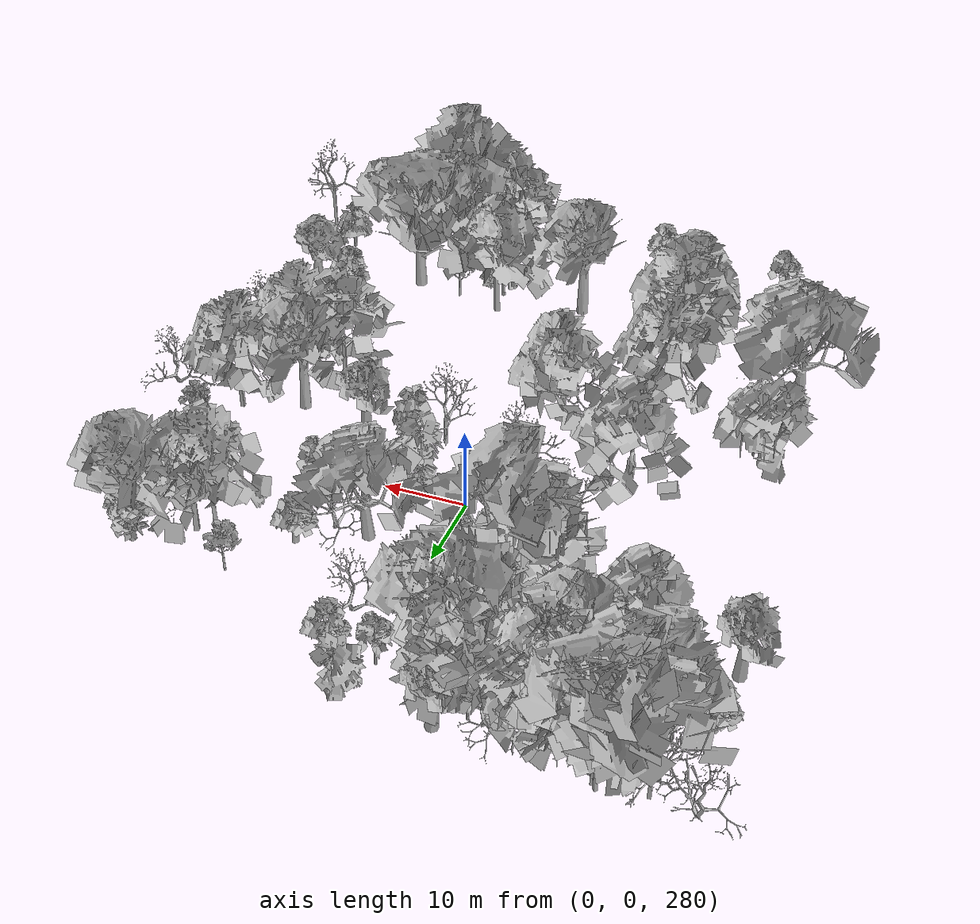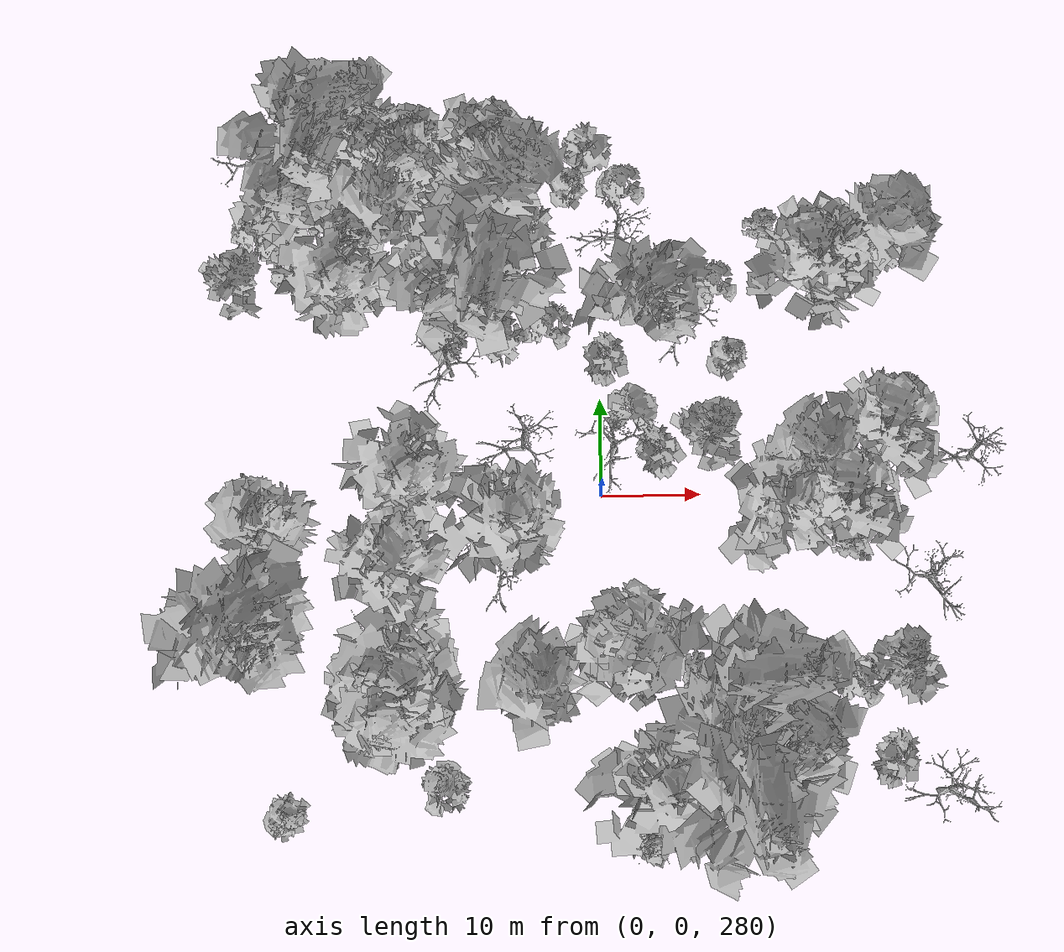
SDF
<sdf version="1.6">
 <world name="default">
  <light name="sun" type="directional">
   <pose>0 0 10 0 -0 0</pose>
   <diffuse>0.8 0.8 0.8 1</diffuse>
   <specular>0.2 0.2 0.2 1</specular>
   <attenuation>
    <range>1000</range>
    <constant>0.9</constant>
    <linear>0.01</linear>
    <quadratic>0.001</quadratic>
   </attenuation>
   <direction>-0.5 0.1 -0.9</direction>
  </light>
  <scene>
   <sky><clouds><speed>12</speed></clouds></sky>
   <ambient>0.4 0.4 0.4 1</ambient>
   <background>0.7 0.7 0.7 1</background>
   <shadows>1</shadows>
  </scene>
  <spherical_coordinates>
   <surface_model>EARTH_WGS84</surface_model>
   <latitude_deg>47.3977</latitude_deg>
   <longitude_deg>8.54559</longitude_deg>
   <elevation>0</elevation>
   <heading_deg>0</heading_deg>
  </spherical_coordinates>
  <physics name="default_physics" default="0" type="ode">
   <ode>
    <solver>
     <type>quick</type>
     <iters>100</iters>
     <sor>1.3</sor>
     <use_dynamic_moi_rescaling>0</use_dynamic_moi_rescaling>
    </solver>
    <constraints>
     <cfm>0</cfm>
     <erp>0.2</erp>
     <contact_max_correcting_vel>100</contact_max_correcting_vel>
     <contact_surface_layer>0.001</contact_surface_layer>
    </constraints>
   </ode>
   <max_step_size>0.002</max_step_size>
   <real_time_factor>1</real_time_factor>
   <real_time_update_rate>500</real_time_update_rate>
  </physics>
  <gravity>0 0 -9.8</gravity>
  <magnetic_field>6e-06 2.3e-05 -4.2e-05</magnetic_field>
  <atmosphere type="adiabatic"/>
  <model name="my_mesh0">
   <pose>-28.4088 34.5346 282.297 0 0 -1.51113</pose>
   <static>1</static>
   <link name="body">
    <visual name="visual">
     <geometry><mesh><uri>model://trees/10.dae</uri><scale>1 1 1</scale></mesh></geometry>
    </visual>
    <collision name="collision">
     <geometry><mesh><uri>model://trees/10.dae</uri><scale>1 1 1</scale></mesh></geometry>
    </collision>
   </link>
  </model>
  <model name="my_mesh1">
   <pose>-17.8794 31.9411 283.606 0 0 -0.438755</pose>
   <static>1</static>
   <link name="body">
    <visual name="visual">
     <geometry><mesh><uri>model://trees/13.dae</uri><scale>1 1 1</scale></mesh></geometry>
    </visual>
    <collision name="collision">
     <geometry><mesh><uri>model://trees/13.dae</uri><scale>1 1 1</scale></mesh></geometry>
    </collision>
   </link>
  </model>
  <model name="my_mesh2">
   <pose>-21.5025 27.5633 284.039 0 0 -0.332394</pose>
   <static>1</static>
   <link name="body">
    <visual name="visual">
     <geometry><mesh><uri>model://trees/11.dae</uri><scale>1 1 1</scale></mesh></geometry>
    </visual>
    <collision name="collision">
     <geometry><mesh><uri>model://trees/11.dae</uri><scale>1 1 1</scale></mesh></geometry>
    </collision>
   </link>
  </model>
  <model name="my_mesh3">
   <pose>-11.5509 32.0171 283.821 0 0 -0.608985</pose>
   <static>1</static>
   <link name="body">
    <visual name="visual">
     <geometry><mesh><uri>model://trees/14.dae</uri><scale>1 1 1</scale></mesh></geometry>
    </visual>
    <collision name="collision">
     <geometry><mesh><uri>model://trees/14.dae</uri><scale>1 1 1</scale></mesh></geometry>
    </collision>
   </link>
  </model>
  <model name="my_mesh4">
   <pose>-20.0736 32.1003 283.446 0 0 -0.068181</pose>
   <static>1</static>
   <link name="body">
    <visual name="visual">
     <geometry><mesh><uri>model://trees/15.dae</uri><scale>1 1 1</scale></mesh></geometry>
    </visual>
    <collision name="collision">
     <geometry><mesh><uri>model://trees/15.dae</uri><scale>1 1 1</scale></mesh></geometry>
    </collision>
   </link>
  </model>
  <model name="my_mesh5">
   <pose>-35.4093 34.9642 281.585 0 -0 1.01191</pose>
   <static>1</static>
   <link name="body">
    <visual name="visual">
     <geometry><mesh><uri>model://trees/18.dae</uri><scale>1 1 1</scale></mesh></geometry>
    </visual>
    <collision name="collision">
     <geometry><mesh><uri>model://trees/18.dae</uri><scale>1 1 1</scale></mesh></geometry>
    </collision>
   </link>
  </model>
  <model name="my_mesh6">
   <pose>-35.4237 19.8077 284.057 0 -0 0.912866</pose>
   <static>1</static>
   <link name="body">
    <visual name="visual">
     <geometry><mesh><uri>model://trees/7.dae</uri><scale>1 1 1</scale></mesh></geometry>
    </visual>
    <collision name="collision">
     <geometry><mesh><uri>model://trees/7.dae</uri><scale>1 1 1</scale></mesh></geometry>
    </collision>
   </link>
  </model>
  <model name="my_mesh7">
   <pose>-29.788 32.2005 282.536 0 0 -0.453841</pose>
   <static>1</static>
   <link name="body">
    <visual name="visual">
     <geometry><mesh><uri>model://trees/19.dae</uri><scale>1 1 1</scale></mesh></geometry>
    </visual>
    <collision name="collision">
     <geometry><mesh><uri>model://trees/19.dae</uri><scale>1 1 1</scale></mesh></geometry>
    </collision>
   </link>
  </model>
  <model name="my_mesh8">
   <pose>-25.8871 35.5865 282.403 0 0 -0.879666</pose>
   <static>1</static>
   <link name="body">
    <visual name="visual">
     <geometry><mesh><uri>model://trees/3.dae</uri><scale>1 1 1</scale></mesh></geometry>
    </visual>
    <collision name="collision">
     <geometry><mesh><uri>model://trees/3.dae</uri><scale>1 1 1</scale></mesh></geometry>
    </collision>
   </link>
  </model>
  <model name="my_mesh9">
   <pose>-26.3975 35.9175 282.279 0 -0 1.4302</pose>
   <static>1</static>
   <link name="body">
    <visual name="visual">
     <geometry><mesh><uri>model://trees/17.dae</uri><scale>1 1 1</scale></mesh></geometry>
    </visual>
    <collision name="collision">
     <geometry><mesh><uri>model://trees/17.dae</uri><scale>1 1 1</scale></mesh></geometry>
    </collision>
   </link>
  </model>
  <model name="my_mesh10">
   <pose>-29.4687 28.6044 283.001 0 -0 0.155872</pose>
   <static>1</static>
   <link name="body">
    <visual name="visual">
     <geometry><mesh><uri>model://trees/1.dae</uri><scale>1 1 1</scale></mesh></geometry>
    </visual>
    <collision name="collision">
     <geometry><mesh><uri>model://trees/1.dae</uri><scale>1 1 1</scale></mesh></geometry>
    </collision>
   </link>
  </model>
  <model name="my_mesh11">
   <pose>-19.239 31.402 283.623 0 0 -0.700118</pose>
   <static>1</static>
   <link name="body">
    <visual name="visual">
     <geometry><mesh><uri>model://trees/19.dae</uri><scale>1 1 1</scale></mesh></geometry>
    </visual>
    <collision name="collision">
     <geometry><mesh><uri>model://trees/19.dae</uri><scale>1 1 1</scale></mesh></geometry>
    </collision>
   </link>
  </model>
  <model name="my_mesh12">
   <pose>-26.0111 22.6941 284.252 0 0 -0.965343</pose>
   <static>1</static>
   <link name="body">
    <visual name="visual">
     <geometry><mesh><uri>model://trees/18.dae</uri><scale>1 1 1</scale></mesh></geometry>
    </visual>
    <collision name="collision">
     <geometry><mesh><uri>model://trees/18.dae</uri><scale>1 1 1</scale></mesh></geometry>
    </collision>
   </link>
  </model>
  <model name="my_mesh13">
   <pose>-13.7154 31.4853 283.916 0 -0 0.332234</pose>
   <static>1</static>
   <link name="body">
    <visual name="visual">
     <geometry><mesh><uri>model://trees/4.dae</uri><scale>1 1 1</scale></mesh></geometry>
    </visual>
    <collision name="collision">
     <geometry><mesh><uri>model://trees/4.dae</uri><scale>1 1 1</scale></mesh></geometry>
    </collision>
   </link>
  </model>
  <model name="my_mesh14">
   <pose>-30.9812 34.8078 282.013 0 0 -0.646296</pose>
   <static>1</static>
   <link name="body">
    <visual name="visual">
     <geometry><mesh><uri>model://trees/17.dae</uri><scale>1 1 1</scale></mesh></geometry>
    </visual>
    <collision name="collision">
     <geometry><mesh><uri>model://trees/17.dae</uri><scale>1 1 1</scale></mesh></geometry>
    </collision>
   </link>
  </model>
  <model name="my_mesh15">
   <pose>-14.9129 33.4919 283.533 0 0 -0.021752</pose>
   <static>1</static>
   <link name="body">
    <visual name="visual">
     <geometry><mesh><uri>model://trees/18.dae</uri><scale>1 1 1</scale></mesh></geometry>
    </visual>
    <collision name="collision">
     <geometry><mesh><uri>model://trees/18.dae</uri><scale>1 1 1</scale></mesh></geometry>
    </collision>
   </link>
  </model>
  <model name="my_mesh16">
   <pose>-30.7776 28.2428 282.873 0 0 -1.40073</pose>
   <static>1</static>
   <link name="body">
    <visual name="visual">
     <geometry><mesh><uri>model://trees/11.dae</uri><scale>1 1 1</scale></mesh></geometry>
    </visual>
    <collision name="collision">
     <geometry><mesh><uri>model://trees/11.dae</uri><scale>1 1 1</scale></mesh></geometry>
    </collision>
   </link>
  </model>
  <model name="my_mesh17">
   <pose>-26.1696 20.3824 284.596 0 0 -0.68529</pose>
   <static>1</static>
   <link name="body">
    <visual name="visual">
     <geometry><mesh><uri>model://trees/12.dae</uri><scale>1 1 1</scale></mesh></geometry>
    </visual>
    <collision name="collision">
     <geometry><mesh><uri>model://trees/12.dae</uri><scale>1 1 1</scale></mesh></geometry>
    </collision>
   </link>
  </model>
  <model name="my_mesh18">
   <pose>-23.2418 30.8693 283.314 0 -0 0.367331</pose>
   <static>1</static>
   <link name="body">
    <visual name="visual">
     <geometry><mesh><uri>model://trees/16.dae</uri><scale>1 1 1</scale></mesh></geometry>
    </visual>
    <collision name="collision">
     <geometry><mesh><uri>model://trees/16.dae</uri><scale>1 1 1</scale></mesh></geometry>
    </collision>
   </link>
  </model>
  <model name="my_mesh19">
   <pose>-26.1749 34.6518 282.526 0 -0 0.747537</pose>
   <static>1</static>
   <link name="body">
    <visual name="visual">
     <geometry><mesh><uri>model://trees/10.dae</uri><scale>1 1 1</scale></mesh></geometry>
    </visual>
    <collision name="collision">
     <geometry><mesh><uri>model://trees/10.dae</uri><scale>1 1 1</scale></mesh></geometry>
    </collision>
   </link>
  </model>
  <model name="my_mesh20">
   <pose>-25.3025 34.4943 282.581 0 -0 0.532983</pose>
   <static>1</static>
   <link name="body">
    <visual name="visual">
     <geometry><mesh><uri>model://trees/14.dae</uri><scale>1 1 1</scale></mesh></geometry>
    </visual>
    <collision name="collision">
     <geometry><mesh><uri>model://trees/14.dae</uri><scale>1 1 1</scale></mesh></geometry>
    </collision>
   </link>
  </model>
  <model name="my_mesh21">
   <pose>-34.5923 26.2613 283.074 0 -0 0.641265</pose>
   <static>1</static>
   <link name="body">
    <visual name="visual">
     <geometry><mesh><uri>model://trees/1.dae</uri><scale>1 1 1</scale></mesh></geometry>
    </visual>
    <collision name="collision">
     <geometry><mesh><uri>model://trees/1.dae</uri><scale>1 1 1</scale></mesh></geometry>
    </collision>
   </link>
  </model>
  <model name="my_mesh22">
   <pose>-32.6772 24.7397 283.355 0 -0 0.827893</pose>
   <static>1</static>
   <link name="body">
    <visual name="visual">
     <geometry><mesh><uri>model://trees/2.dae</uri><scale>1 1 1</scale></mesh></geometry>
    </visual>
    <collision name="collision">
     <geometry><mesh><uri>model://trees/2.dae</uri><scale>1 1 1</scale></mesh></geometry>
    </collision>
   </link>
  </model>
  <model name="my_mesh23">
   <pose>-23.3553 30.0352 283.534 0 0 -0.638998</pose>
   <static>1</static>
   <link name="body">
    <visual name="visual">
     <geometry><mesh><uri>model://trees/3.dae</uri><scale>1 1 1</scale></mesh></geometry>
    </visual>
    <collision name="collision">
     <geometry><mesh><uri>model://trees/3.dae</uri><scale>1 1 1</scale></mesh></geometry>
    </collision>
   </link>
  </model>
  <model name="my_mesh24">
   <pose>-13.4147 33.2828 283.531 0 0 -0.741546</pose>
   <static>1</static>
   <link name="body">
    <visual name="visual">
     <geometry><mesh><uri>model://trees/2.dae</uri><scale>1 1 1</scale></mesh></geometry>
    </visual>
    <collision name="collision">
     <geometry><mesh><uri>model://trees/2.dae</uri><scale>1 1 1</scale></mesh></geometry>
    </collision>
   </link>
  </model>
  <model name="my_mesh25">
   <pose>-26.0536 33.1127 282.69 0 -0 0.557614</pose>
   <static>1</static>
   <link name="body">
    <visual name="visual">
     <geometry><mesh><uri>model://trees/13.dae</uri><scale>1 1 1</scale></mesh></geometry>
    </visual>
    <collision name="collision">
     <geometry><mesh><uri>model://trees/13.dae</uri><scale>1 1 1</scale></mesh></geometry>
    </collision>
   </link>
  </model>
  <model name="my_mesh26">
   <pose>-22.6295 30.2768 283.484 0 0 -1.01206</pose>
   <static>1</static>
   <link name="body">
    <visual name="visual">
     <geometry><mesh><uri>model://trees/2.dae</uri><scale>1 1 1</scale></mesh></geometry>
    </visual>
    <collision name="collision">
     <geometry><mesh><uri>model://trees/2.dae</uri><scale>1 1 1</scale></mesh></geometry>
    </collision>
   </link>
  </model>
  <model name="my_mesh27">
   <pose>-22.5896 32.1897 283.245 0 -0 0.664648</pose>
   <static>1</static>
   <link name="body">
    <visual name="visual">
     <geometry><mesh><uri>model://trees/15.dae</uri><scale>1 1 1</scale></mesh></geometry>
    </visual>
    <collision name="collision">
     <geometry><mesh><uri>model://trees/15.dae</uri><scale>1 1 1</scale></mesh></geometry>
    </collision>
   </link>
  </model>
  <model name="my_mesh28">
   <pose>-22.8065 33.1455 283.002 0 0 -0.834272</pose>
   <static>1</static>
   <link name="body">
    <visual name="visual">
     <geometry><mesh><uri>model://trees/15.dae</uri><scale>1 1 1</scale></mesh></geometry>
    </visual>
    <collision name="collision">
     <geometry><mesh><uri>model://trees/15.dae</uri><scale>1 1 1</scale></mesh></geometry>
    </collision>
   </link>
  </model>
  <model name="my_mesh29">
   <pose>-19.3142 30.8064 283.623 0 0 -1.25954</pose>
   <static>1</static>
   <link name="body">
    <visual name="visual">
     <geometry><mesh><uri>model://trees/15.dae</uri><scale>1 1 1</scale></mesh></geometry>
    </visual>
    <collision name="collision">
     <geometry><mesh><uri>model://trees/15.dae</uri><scale>1 1 1</scale></mesh></geometry>
    </collision>
   </link>
  </model>
  <model name="my_mesh30">
   <pose>1.86501 25.4807 285.312 0 0 -1.11542</pose>
   <static>1</static>
   <link name="body">
    <visual name="visual">
     <geometry><mesh><uri>model://trees/19.dae</uri><scale>1 1 1</scale></mesh></geometry>
    </visual>
    <collision name="collision">
     <geometry><mesh><uri>model://trees/19.dae</uri><scale>1 1 1</scale></mesh></geometry>
    </collision>
   </link>
  </model>
  <model name="my_mesh31">
   <pose>-15.7926 32.054 283.714 0 0 -0.87119</pose>
   <static>1</static>
   <link name="body">
    <visual name="visual">
     <geometry><mesh><uri>model://trees/19.dae</uri><scale>1 1 1</scale></mesh></geometry>
    </visual>
    <collision name="collision">
     <geometry><mesh><uri>model://trees/19.dae</uri><scale>1 1 1</scale></mesh></geometry>
    </collision>
   </link>
  </model>
  <model name="my_mesh32">
   <pose>-1.10429 34.451 283.535 0 -0 1.2654</pose>
   <static>1</static>
   <link name="body">
    <visual name="visual">
     <geometry><mesh><uri>model://trees/5.dae</uri><scale>1 1 1</scale></mesh></geometry>
    </visual>
    <collision name="collision">
     <geometry><mesh><uri>model://trees/5.dae</uri><scale>1 1 1</scale></mesh></geometry>
    </collision>
   </link>
  </model>
  <model name="my_mesh33">
   <pose>10.5964 -25.2979 295.899 0 0 -0.203001</pose>
   <static>1</static>
   <link name="body">
    <visual name="visual">
     <geometry><mesh><uri>model://trees/9.dae</uri><scale>1 1 1</scale></mesh></geometry>
    </visual>
    <collision name="collision">
     <geometry><mesh><uri>model://trees/9.dae</uri><scale>1 1 1</scale></mesh></geometry>
    </collision>
   </link>
  </model>
  <model name="my_mesh34">
   <pose>5.40245 1.97266 289.743 0 -0 1.43075</pose>
   <static>1</static>
   <link name="body">
    <visual name="visual">
     <geometry><mesh><uri>model://trees/4.dae</uri><scale>1 1 1</scale></mesh></geometry>
    </visual>
    <collision name="collision">
     <geometry><mesh><uri>model://trees/4.dae</uri><scale>1 1 1</scale></mesh></geometry>
    </collision>
   </link>
  </model>
  <model name="my_mesh35">
   <pose>11.7338 -30.8731 296.887 0 0 -1.09241</pose>
   <static>1</static>
   <link name="body">
    <visual name="visual">
     <geometry><mesh><uri>model://trees/10.dae</uri><scale>1 1 1</scale></mesh></geometry>
    </visual>
    <collision name="collision">
     <geometry><mesh><uri>model://trees/10.dae</uri><scale>1 1 1</scale></mesh></geometry>
    </collision>
   </link>
  </model>
  <model name="my_mesh36">
   <pose>27.1831 24.5632 286.088 0 0 -0.787001</pose>
   <static>1</static>
   <link name="body">
    <visual name="visual">
     <geometry><mesh><uri>model://trees/1.dae</uri><scale>1 1 1</scale></mesh></geometry>
    </visual>
    <collision name="collision">
     <geometry><mesh><uri>model://trees/1.dae</uri><scale>1 1 1</scale></mesh></geometry>
    </collision>
   </link>
  </model>
  <model name="my_mesh37">
   <pose>28.4474 22.9715 286.408 0 -0 1.30377</pose>
   <static>1</static>
   <link name="body">
    <visual name="visual">
     <geometry><mesh><uri>model://trees/0.dae</uri><scale>1 1 1</scale></mesh></geometry>
    </visual>
    <collision name="collision">
     <geometry><mesh><uri>model://trees/0.dae</uri><scale>1 1 1</scale></mesh></geometry>
    </collision>
   </link>
  </model>
  <model name="my_mesh38">
   <pose>25.8418 -27.3187 294.941 0 -0 0.779199</pose>
   <static>1</static>
   <link name="body">
    <visual name="visual">
     <geometry><mesh><uri>model://trees/4.dae</uri><scale>1 1 1</scale></mesh></geometry>
    </visual>
    <collision name="collision">
     <geometry><mesh><uri>model://trees/4.dae</uri><scale>1 1 1</scale></mesh></geometry>
    </collision>
   </link>
  </model>
  <model name="my_mesh39">
   <pose>12.3841 11.7139 287.865 0 0 -0.883083</pose>
   <static>1</static>
   <link name="body">
    <visual name="visual">
     <geometry><mesh><uri>model://trees/2.dae</uri><scale>1 1 1</scale></mesh></geometry>
    </visual>
    <collision name="collision">
     <geometry><mesh><uri>model://trees/2.dae</uri><scale>1 1 1</scale></mesh></geometry>
    </collision>
   </link>
  </model>
  <model name="my_mesh40">
   <pose>-9.2763 13.7416 287.679 0 -0 1.46205</pose>
   <static>1</static>
   <link name="body">
    <visual name="visual">
     <geometry><mesh><uri>model://trees/1.dae</uri><scale>1 1 1</scale></mesh></geometry>
    </visual>
    <collision name="collision">
     <geometry><mesh><uri>model://trees/1.dae</uri><scale>1 1 1</scale></mesh></geometry>
    </collision>
   </link>
  </model>
  <model name="my_mesh41">
   <pose>-2.92269 30.4092 284.129 0 0 -0.552093</pose>
   <static>1</static>
   <link name="body">
    <visual name="visual">
     <geometry><mesh><uri>model://trees/2.dae</uri><scale>1 1 1</scale></mesh></geometry>
    </visual>
    <collision name="collision">
     <geometry><mesh><uri>model://trees/2.dae</uri><scale>1 1 1</scale></mesh></geometry>
    </collision>
   </link>
  </model>
  <model name="my_mesh42">
   <pose>-9.48073 28.0142 284.472 0 -0 0.543245</pose>
   <static>1</static>
   <link name="body">
    <visual name="visual">
     <geometry><mesh><uri>model://trees/9.dae</uri><scale>1 1 1</scale></mesh></geometry>
    </visual>
    <collision name="collision">
     <geometry><mesh><uri>model://trees/9.dae</uri><scale>1 1 1</scale></mesh></geometry>
    </collision>
   </link>
  </model>
  <model name="my_mesh43">
   <pose>-13.7267 25.5987 285.014 0 0 -0.095595</pose>
   <static>1</static>
   <link name="body">
    <visual name="visual">
     <geometry><mesh><uri>model://trees/12.dae</uri><scale>1 1 1</scale></mesh></geometry>
    </visual>
    <collision name="collision">
     <geometry><mesh><uri>model://trees/12.dae</uri><scale>1 1 1</scale></mesh></geometry>
    </collision>
   </link>
  </model>
  <model name="my_mesh44">
   <pose>35.24 1.49025 289.615 0 0 -1.30573</pose>
   <static>1</static>
   <link name="body">
    <visual name="visual">
     <geometry><mesh><uri>model://trees/18.dae</uri><scale>1 1 1</scale></mesh></geometry>
    </visual>
    <collision name="collision">
     <geometry><mesh><uri>model://trees/18.dae</uri><scale>1 1 1</scale></mesh></geometry>
    </collision>
   </link>
  </model>
  <model name="my_mesh45">
   <pose>25.2457 -3.41194 290.16 0 -0 1.1496</pose>
   <static>1</static>
   <link name="body">
    <visual name="visual">
     <geometry><mesh><uri>model://trees/6.dae</uri><scale>1 1 1</scale></mesh></geometry>
    </visual>
    <collision name="collision">
     <geometry><mesh><uri>model://trees/6.dae</uri><scale>1 1 1</scale></mesh></geometry>
    </collision>
   </link>
  </model>
  <model name="my_mesh46">
   <pose>21.6402 -3.89195 290.359 0 -0 1.16236</pose>
   <static>1</static>
   <link name="body">
    <visual name="visual">
     <geometry><mesh><uri>model://trees/15.dae</uri><scale>1 1 1</scale></mesh></geometry>
    </visual>
    <collision name="collision">
     <geometry><mesh><uri>model://trees/15.dae</uri><scale>1 1 1</scale></mesh></geometry>
    </collision>
   </link>
  </model>
  <model name="my_mesh47">
   <pose>27.9759 23.4818 286.319 0 -0 0.774337</pose>
   <static>1</static>
   <link name="body">
    <visual name="visual">
     <geometry><mesh><uri>model://trees/11.dae</uri><scale>1 1 1</scale></mesh></geometry>
    </visual>
    <collision name="collision">
     <geometry><mesh><uri>model://trees/11.dae</uri><scale>1 1 1</scale></mesh></geometry>
    </collision>
   </link>
  </model>
  <model name="my_mesh48">
   <pose>16.1058 25.1708 285.712 0 -0 0.949526</pose>
   <static>1</static>
   <link name="body">
    <visual name="visual">
     <geometry><mesh><uri>model://trees/3.dae</uri><scale>1 1 1</scale></mesh></geometry>
    </visual>
    <collision name="collision">
     <geometry><mesh><uri>model://trees/3.dae</uri><scale>1 1 1</scale></mesh></geometry>
    </collision>
   </link>
  </model>
  <model name="my_mesh49">
   <pose>16.1177 -3.54832 290.576 0 0 -0.436973</pose>
   <static>1</static>
   <link name="body">
    <visual name="visual">
     <geometry><mesh><uri>model://trees/15.dae</uri><scale>1 1 1</scale></mesh></geometry>
    </visual>
    <collision name="collision">
     <geometry><mesh><uri>model://trees/15.dae</uri><scale>1 1 1</scale></mesh></geometry>
    </collision>
   </link>
  </model>
  <model name="my_mesh50">
   <pose>11.0105 19.4512 286.605 0 -0 0.784841</pose>
   <static>1</static>
   <link name="body">
    <visual name="visual">
     <geometry><mesh><uri>model://trees/1.dae</uri><scale>1 1 1</scale></mesh></geometry>
    </visual>
    <collision name="collision">
     <geometry><mesh><uri>model://trees/1.dae</uri><scale>1 1 1</scale></mesh></geometry>
    </collision>
   </link>
  </model>
  <model name="my_mesh51">
   <pose>27.1775 -19.0896 293.072 0 -0 1.42244</pose>
   <static>1</static>
   <link name="body">
    <visual name="visual">
     <geometry><mesh><uri>model://trees/7.dae</uri><scale>1 1 1</scale></mesh></geometry>
    </visual>
    <collision name="collision">
     <geometry><mesh><uri>model://trees/7.dae</uri><scale>1 1 1</scale></mesh></geometry>
    </collision>
   </link>
  </model>
  <model name="my_mesh52">
   <pose>14.4252 -22.0097 294.501 0 -0 0.456925</pose>
   <static>1</static>
   <link name="body">
    <visual name="visual">
     <geometry><mesh><uri>model://trees/10.dae</uri><scale>1 1 1</scale></mesh></geometry>
    </visual>
    <collision name="collision">
     <geometry><mesh><uri>model://trees/10.dae</uri><scale>1 1 1</scale></mesh></geometry>
    </collision>
   </link>
  </model>
  <model name="my_mesh53">
   <pose>28.898 7.76432 288.687 0 -0 0.324701</pose>
   <static>1</static>
   <link name="body">
    <visual name="visual">
     <geometry><mesh><uri>model://trees/3.dae</uri><scale>1 1 1</scale></mesh></geometry>
    </visual>
    <collision name="collision">
     <geometry><mesh><uri>model://trees/3.dae</uri><scale>1 1 1</scale></mesh></geometry>
    </collision>
   </link>
  </model>
  <model name="my_mesh54">
   <pose>23.0044 -7.30324 291.006 0 -0 0.964532</pose>
   <static>1</static>
   <link name="body">
    <visual name="visual">
     <geometry><mesh><uri>model://trees/3.dae</uri><scale>1 1 1</scale></mesh></geometry>
    </visual>
    <collision name="collision">
     <geometry><mesh><uri>model://trees/3.dae</uri><scale>1 1 1</scale></mesh></geometry>
    </collision>
   </link>
  </model>
  <model name="my_mesh55">
   <pose>-4.97617 15.4022 287.159 0 -0 0.295939</pose>
   <static>1</static>
   <link name="body">
    <visual name="visual">
     <geometry><mesh><uri>model://trees/1.dae</uri><scale>1 1 1</scale></mesh></geometry>
    </visual>
    <collision name="collision">
     <geometry><mesh><uri>model://trees/1.dae</uri><scale>1 1 1</scale></mesh></geometry>
    </collision>
   </link>
  </model>
  <model name="my_mesh56">
   <pose>-7.50854 2.93123 290.561 0 0 -1.11641</pose>
   <static>1</static>
   <link name="body">
    <visual name="visual">
     <geometry><mesh><uri>model://trees/18.dae</uri><scale>1 1 1</scale></mesh></geometry>
    </visual>
    <collision name="collision">
     <geometry><mesh><uri>model://trees/18.dae</uri><scale>1 1 1</scale></mesh></geometry>
    </collision>
   </link>
  </model>
  <model name="my_mesh57">
   <pose>4.62004 -30.3523 297.88 0 -0 0.764763</pose>
   <static>1</static>
   <link name="body">
    <visual name="visual">
     <geometry><mesh><uri>model://trees/12.dae</uri><scale>1 1 1</scale></mesh></geometry>
    </visual>
    <collision name="collision">
     <geometry><mesh><uri>model://trees/12.dae</uri><scale>1 1 1</scale></mesh></geometry>
    </collision>
   </link>
  </model>
  <model name="my_mesh58">
   <pose>23.2465 -20.0111 292.805 0 -0 0.246321</pose>
   <static>1</static>
   <link name="body">
    <visual name="visual">
     <geometry><mesh><uri>model://trees/1.dae</uri><scale>1 1 1</scale></mesh></geometry>
    </visual>
    <collision name="collision">
     <geometry><mesh><uri>model://trees/1.dae</uri><scale>1 1 1</scale></mesh></geometry>
    </collision>
   </link>
  </model>
  <model name="my_mesh59">
   <pose>2.21501 30.4198 284.349 0 -0 0.748167</pose>
   <static>1</static>
   <link name="body">
    <visual name="visual">
     <geometry><mesh><uri>model://trees/0.dae</uri><scale>1 1 1</scale></mesh></geometry>
    </visual>
    <collision name="collision">
     <geometry><mesh><uri>model://trees/0.dae</uri><scale>1 1 1</scale></mesh></geometry>
    </collision>
   </link>
  </model>
  <model name="my_mesh60">
   <pose>21.9072 20.7601 285.993 0 0 -0.379497</pose>
   <static>1</static>
   <link name="body">
    <visual name="visual">
     <geometry><mesh><uri>model://trees/14.dae</uri><scale>1 1 1</scale></mesh></geometry>
    </visual>
    <collision name="collision">
     <geometry><mesh><uri>model://trees/14.dae</uri><scale>1 1 1</scale></mesh></geometry>
    </collision>
   </link>
  </model>
  <model name="my_mesh61">
   <pose>25.9113 3.06667 289.414 0 -0 0.874884</pose>
   <static>1</static>
   <link name="body">
    <visual name="visual">
     <geometry><mesh><uri>model://trees/15.dae</uri><scale>1 1 1</scale></mesh></geometry>
    </visual>
    <collision name="collision">
     <geometry><mesh><uri>model://trees/15.dae</uri><scale>1 1 1</scale></mesh></geometry>
    </collision>
   </link>
  </model>
  <model name="my_mesh62">
   <pose>-9.42658 -5.23508 292.328 0 -0 0.252604</pose>
   <static>1</static>
   <link name="body">
    <visual name="visual">
     <geometry><mesh><uri>model://trees/12.dae</uri><scale>1 1 1</scale></mesh></geometry>
    </visual>
    <collision name="collision">
     <geometry><mesh><uri>model://trees/12.dae</uri><scale>1 1 1</scale></mesh></geometry>
    </collision>
   </link>
  </model>
  <model name="my_mesh63">
   <pose>8.0482 16.2737 286.857 0 0 -0.031942</pose>
   <static>1</static>
   <link name="body">
    <visual name="visual">
     <geometry><mesh><uri>model://trees/19.dae</uri><scale>1 1 1</scale></mesh></geometry>
    </visual>
    <collision name="collision">
     <geometry><mesh><uri>model://trees/19.dae</uri><scale>1 1 1</scale></mesh></geometry>
    </collision>
   </link>
  </model>
  <model name="my_mesh64">
   <pose>19.0685 0.849353 289.576 0 0 -0.112748</pose>
   <static>1</static>
   <link name="body">
    <visual name="visual">
     <geometry><mesh><uri>model://trees/11.dae</uri><scale>1 1 1</scale></mesh></geometry>
    </visual>
    <collision name="collision">
     <geometry><mesh><uri>model://trees/11.dae</uri><scale>1 1 1</scale></mesh></geometry>
    </collision>
   </link>
  </model>
  <model name="my_mesh65">
   <pose>20.1672 19.7632 286.614 0 -0 1.4331</pose>
   <static>1</static>
   <link name="body">
    <visual name="visual">
     <geometry><mesh><uri>model://trees/15.dae</uri><scale>1 1 1</scale></mesh></geometry>
    </visual>
    <collision name="collision">
     <geometry><mesh><uri>model://trees/15.dae</uri><scale>1 1 1</scale></mesh></geometry>
    </collision>
   </link>
  </model>
  <model name="my_mesh66">
   <pose>-14.7295 18.83 286.219 0 -0 0.855611</pose>
   <static>1</static>
   <link name="body">
    <visual name="visual">
     <geometry><mesh><uri>model://trees/14.dae</uri><scale>1 1 1</scale></mesh></geometry>
    </visual>
    <collision name="collision">
     <geometry><mesh><uri>model://trees/14.dae</uri><scale>1 1 1</scale></mesh></geometry>
    </collision>
   </link>
  </model>
  <model name="my_mesh67">
   <pose>8.37592 -19.5685 295.316 0 0 -0.409863</pose>
   <static>1</static>
   <link name="body">
    <visual name="visual">
     <geometry><mesh><uri>model://trees/3.dae</uri><scale>1 1 1</scale></mesh></geometry>
    </visual>
    <collision name="collision">
     <geometry><mesh><uri>model://trees/3.dae</uri><scale>1 1 1</scale></mesh></geometry>
    </collision>
   </link>
  </model>
  <model name="my_mesh68">
   <pose>-27.9707 -31.4152 296.105 0 0 -1.08082</pose>
   <static>1</static>
   <link name="body">
    <visual name="visual">
     <geometry><mesh><uri>model://trees/2.dae</uri><scale>1 1 1</scale></mesh></geometry>
    </visual>
    <collision name="collision">
     <geometry><mesh><uri>model://trees/2.dae</uri><scale>1 1 1</scale></mesh></geometry>
    </collision>
   </link>
  </model>
  <model name="my_mesh69">
   <pose>0.436579 11.5371 287.921 0 -0 1.03382</pose>
   <static>1</static>
   <link name="body">
    <visual name="visual">
     <geometry><mesh><uri>model://trees/4.dae</uri><scale>1 1 1</scale></mesh></geometry>
    </visual>
    <collision name="collision">
     <geometry><mesh><uri>model://trees/4.dae</uri><scale>1 1 1</scale></mesh></geometry>
    </collision>
   </link>
  </model>
  <model name="my_mesh70">
   <pose>-19.1968 -22.2167 295.307 0 0 -1.22922</pose>
   <static>1</static>
   <link name="body">
    <visual name="visual">
     <geometry><mesh><uri>model://trees/12.dae</uri><scale>1 1 1</scale></mesh></geometry>
    </visual>
    <collision name="collision">
     <geometry><mesh><uri>model://trees/12.dae</uri><scale>1 1 1</scale></mesh></geometry>
    </collision>
   </link>
  </model>
  <model name="my_mesh71">
   <pose>-18.2064 -21.1257 295.222 0 -0 1.05371</pose>
   <static>1</static>
   <link name="body">
    <visual name="visual">
     <geometry><mesh><uri>model://trees/12.dae</uri><scale>1 1 1</scale></mesh></geometry>
    </visual>
    <collision name="collision">
     <geometry><mesh><uri>model://trees/12.dae</uri><scale>1 1 1</scale></mesh></geometry>
    </collision>
   </link>
  </model>
  <model name="my_mesh72">
   <pose>29.8088 -30.0088 295.45 0 -0 1.229</pose>
   <static>1</static>
   <link name="body">
    <visual name="visual">
     <geometry><mesh><uri>model://trees/16.dae</uri><scale>1 1 1</scale></mesh></geometry>
    </visual>
    <collision name="collision">
     <geometry><mesh><uri>model://trees/16.dae</uri><scale>1 1 1</scale></mesh></geometry>
    </collision>
   </link>
  </model>
  <model name="my_mesh73">
   <pose>-11.6644 18.0381 286.681 0 0 -1.44632</pose>
   <static>1</static>
   <link name="body">
    <visual name="visual">
     <geometry><mesh><uri>model://trees/10.dae</uri><scale>1 1 1</scale></mesh></geometry>
    </visual>
    <collision name="collision">
     <geometry><mesh><uri>model://trees/10.dae</uri><scale>1 1 1</scale></mesh></geometry>
    </collision>
   </link>
  </model>
  <model name="my_mesh74">
   <pose>-18.9359 0.138939 289.209 0 0 -0.627758</pose>
   <static>1</static>
   <link name="body">
    <visual name="visual">
     <geometry><mesh><uri>model://trees/12.dae</uri><scale>1 1 1</scale></mesh></geometry>
    </visual>
    <collision name="collision">
     <geometry><mesh><uri>model://trees/12.dae</uri><scale>1 1 1</scale></mesh></geometry>
    </collision>
   </link>
  </model>
  <model name="my_mesh75">
   <pose>-31.3675 -6.0373 289.704 0 0 -0.143772</pose>
   <static>1</static>
   <link name="body">
    <visual name="visual">
     <geometry><mesh><uri>model://trees/13.dae</uri><scale>1 1 1</scale></mesh></geometry>
    </visual>
    <collision name="collision">
     <geometry><mesh><uri>model://trees/13.dae</uri><scale>1 1 1</scale></mesh></geometry>
    </collision>
   </link>
  </model>
  <model name="my_mesh76">
   <pose>16.3821 -26.6137 295.286 0 -0 1.02407</pose>
   <static>1</static>
   <link name="body">
    <visual name="visual">
     <geometry><mesh><uri>model://trees/11.dae</uri><scale>1 1 1</scale></mesh></geometry>
    </visual>
    <collision name="collision">
     <geometry><mesh><uri>model://trees/11.dae</uri><scale>1 1 1</scale></mesh></geometry>
    </collision>
   </link>
  </model>
  <model name="my_mesh77">
   <pose>-10.608 35.1095 283.257 0 -0 1.13627</pose>
   <static>1</static>
   <link name="body">
    <visual name="visual">
     <geometry><mesh><uri>model://trees/7.dae</uri><scale>1 1 1</scale></mesh></geometry>
    </visual>
    <collision name="collision">
     <geometry><mesh><uri>model://trees/7.dae</uri><scale>1 1 1</scale></mesh></geometry>
    </collision>
   </link>
  </model>
  <model name="my_mesh78">
   <pose>2.99759 -20.1674 296.176 0 0 -0.074227</pose>
   <static>1</static>
   <link name="body">
    <visual name="visual">
     <geometry><mesh><uri>model://trees/4.dae</uri><scale>1 1 1</scale></mesh></geometry>
    </visual>
    <collision name="collision">
     <geometry><mesh><uri>model://trees/4.dae</uri><scale>1 1 1</scale></mesh></geometry>
    </collision>
   </link>
  </model>
  <model name="my_mesh79">
   <pose>3.58144 -34.2897 298.667 0 0 -1.30236</pose>
   <static>1</static>
   <link name="body">
    <visual name="visual">
     <geometry><mesh><uri>model://trees/6.dae</uri><scale>1 1 1</scale></mesh></geometry>
    </visual>
    <collision name="collision">
     <geometry><mesh><uri>model://trees/6.dae</uri><scale>1 1 1</scale></mesh></geometry>
    </collision>
   </link>
  </model>
  <model name="my_mesh80">
   <pose>-24.6774 25.046 284.152 0 0 -1.37076</pose>
   <static>1</static>
   <link name="body">
    <visual name="visual">
     <geometry><mesh><uri>model://trees/7.dae</uri><scale>1 1 1</scale></mesh></geometry>
    </visual>
    <collision name="collision">
     <geometry><mesh><uri>model://trees/7.dae</uri><scale>1 1 1</scale></mesh></geometry>
    </collision>
   </link>
  </model>
  <model name="my_mesh81">
   <pose>-19.7287 -9.64513 291.577 0 -0 0.553233</pose>
   <static>1</static>
   <link name="body">
    <visual name="visual">
     <geometry><mesh><uri>model://trees/15.dae</uri><scale>1 1 1</scale></mesh></geometry>
    </visual>
    <collision name="collision">
     <geometry><mesh><uri>model://trees/15.dae</uri><scale>1 1 1</scale></mesh></geometry>
    </collision>
   </link>
  </model>
  <model name="my_mesh82">
   <pose>-14.0541 -29.3434 298.066 0 0 -0.877501</pose>
   <static>1</static>
   <link name="body">
    <visual name="visual">
     <geometry><mesh><uri>model://trees/0.dae</uri><scale>1 1 1</scale></mesh></geometry>
    </visual>
    <collision name="collision">
     <geometry><mesh><uri>model://trees/0.dae</uri><scale>1 1 1</scale></mesh></geometry>
    </collision>
   </link>
  </model>
  <model name="my_mesh83">
   <pose>10.5125 3.01388 289.391 0 -0 0.997031</pose>
   <static>1</static>
   <link name="body">
    <visual name="visual">
     <geometry><mesh><uri>model://trees/7.dae</uri><scale>1 1 1</scale></mesh></geometry>
    </visual>
    <collision name="collision">
     <geometry><mesh><uri>model://trees/7.dae</uri><scale>1 1 1</scale></mesh></geometry>
    </collision>
   </link>
  </model>
  <model name="my_mesh84">
   <pose>2.73832 -17.2233 295.731 0 -0 1.39385</pose>
   <static>1</static>
   <link name="body">
    <visual name="visual">
     <geometry><mesh><uri>model://trees/14.dae</uri><scale>1 1 1</scale></mesh></geometry>
    </visual>
    <collision name="collision">
     <geometry><mesh><uri>model://trees/14.dae</uri><scale>1 1 1</scale></mesh></geometry>
    </collision>
   </link>
  </model>
  <model name="my_mesh85">
   <pose>-19.878 -19.025 294.233 0 0 -1.54854</pose>
   <static>1</static>
   <link name="body">
    <visual name="visual">
     <geometry><mesh><uri>model://trees/12.dae</uri><scale>1 1 1</scale></mesh></geometry>
    </visual>
    <collision name="collision">
     <geometry><mesh><uri>model://trees/12.dae</uri><scale>1 1 1</scale></mesh></geometry>
    </collision>
   </link>
  </model>
  <model name="my_mesh86">
   <pose>1.26813 2.45226 290.113 0 0 -0.064477</pose>
   <static>1</static>
   <link name="body">
    <visual name="visual">
     <geometry><mesh><uri>model://trees/17.dae</uri><scale>1 1 1</scale></mesh></geometry>
    </visual>
    <collision name="collision">
     <geometry><mesh><uri>model://trees/17.dae</uri><scale>1 1 1</scale></mesh></geometry>
    </collision>
   </link>
  </model>
  <model name="my_mesh87">
   <pose>-9.84061 28.3416 284.479 0 -0 0.143368</pose>
   <static>1</static>
   <link name="body">
    <visual name="visual">
     <geometry><mesh><uri>model://trees/3.dae</uri><scale>1 1 1</scale></mesh></geometry>
    </visual>
    <collision name="collision">
     <geometry><mesh><uri>model://trees/3.dae</uri><scale>1 1 1</scale></mesh></geometry>
    </collision>
   </link>
  </model>
  <model name="my_mesh88">
   <pose>30.7162 -10.3088 291.574 0 -0 0.642351</pose>
   <static>1</static>
   <link name="body">
    <visual name="visual">
     <geometry><mesh><uri>model://trees/18.dae</uri><scale>1 1 1</scale></mesh></geometry>
    </visual>
    <collision name="collision">
     <geometry><mesh><uri>model://trees/18.dae</uri><scale>1 1 1</scale></mesh></geometry>
    </collision>
   </link>
  </model>
  <model name="my_mesh89">
   <pose>4.0886 16.594 286.978 0 0 -0.921722</pose>
   <static>1</static>
   <link name="body">
    <visual name="visual">
     <geometry><mesh><uri>model://trees/8.dae</uri><scale>1 1 1</scale></mesh></geometry>
    </visual>
    <collision name="collision">
     <geometry><mesh><uri>model://trees/8.dae</uri><scale>1 1 1</scale></mesh></geometry>
    </collision>
   </link>
  </model>
  <model name="my_mesh90">
   <pose>-14.5482 10.8833 287.725 0 0 -0.425667</pose>
   <static>1</static>
   <link name="body">
    <visual name="visual">
     <geometry><mesh><uri>model://trees/17.dae</uri><scale>1 1 1</scale></mesh></geometry>
    </visual>
    <collision name="collision">
     <geometry><mesh><uri>model://trees/17.dae</uri><scale>1 1 1</scale></mesh></geometry>
    </collision>
   </link>
  </model>
  <model name="my_mesh91">
   <pose>2.93307 6.10809 288.888 0 0 -0.967036</pose>
   <static>1</static>
   <link name="body">
    <visual name="visual">
     <geometry><mesh><uri>model://trees/5.dae</uri><scale>1 1 1</scale></mesh></geometry>
    </visual>
    <collision name="collision">
     <geometry><mesh><uri>model://trees/5.dae</uri><scale>1 1 1</scale></mesh></geometry>
    </collision>
   </link>
  </model>
  <model name="my_mesh92">
   <pose>-6.65055 25.5998 284.93 0 -0 0.631464</pose>
   <static>1</static>
   <link name="body">
    <visual name="visual">
     <geometry><mesh><uri>model://trees/5.dae</uri><scale>1 1 1</scale></mesh></geometry>
    </visual>
    <collision name="collision">
     <geometry><mesh><uri>model://trees/5.dae</uri><scale>1 1 1</scale></mesh></geometry>
    </collision>
   </link>
  </model>
  <model name="my_mesh93">
   <pose>21.3086 16.5268 286.907 0 0 -0.887087</pose>
   <static>1</static>
   <link name="body">
    <visual name="visual">
     <geometry><mesh><uri>model://trees/6.dae</uri><scale>1 1 1</scale></mesh></geometry>
    </visual>
    <collision name="collision">
     <geometry><mesh><uri>model://trees/6.dae</uri><scale>1 1 1</scale></mesh></geometry>
    </collision>
   </link>
  </model>
  <model name="my_mesh94">
   <pose>-9.35225 -8.58486 292.985 0 -0 0.092235</pose>
   <static>1</static>
   <link name="body">
    <visual name="visual">
     <geometry><mesh><uri>model://trees/19.dae</uri><scale>1 1 1</scale></mesh></geometry>
    </visual>
    <collision name="collision">
     <geometry><mesh><uri>model://trees/19.dae</uri><scale>1 1 1</scale></mesh></geometry>
    </collision>
   </link>
  </model>
  <model name="my_mesh95">
   <pose>-33.4069 -15.5316 291.46 0 0 -0.682399</pose>
   <static>1</static>
   <link name="body">
    <visual name="visual">
     <geometry><mesh><uri>model://trees/9.dae</uri><scale>1 1 1</scale></mesh></geometry>
    </visual>
    <collision name="collision">
     <geometry><mesh><uri>model://trees/9.dae</uri><scale>1 1 1</scale></mesh></geometry>
    </collision>
   </link>
  </model>
  <model name="my_mesh96">
   <pose>-30.6089 22.6704 283.992 0 0 -1.02531</pose>
   <static>1</static>
   <link name="body">
    <visual name="visual">
     <geometry><mesh><uri>model://trees/1.dae</uri><scale>1 1 1</scale></mesh></geometry>
    </visual>
    <collision name="collision">
     <geometry><mesh><uri>model://trees/1.dae</uri><scale>1 1 1</scale></mesh></geometry>
    </collision>
   </link>
  </model>
  <model name="my_mesh97">
   <pose>-6.74329 -20.3437 295.729 0 0 -0.025152</pose>
   <static>1</static>
   <link name="body">
    <visual name="visual">
     <geometry><mesh><uri>model://trees/11.dae</uri><scale>1 1 1</scale></mesh></geometry>
    </visual>
    <collision name="collision">
     <geometry><mesh><uri>model://trees/11.dae</uri><scale>1 1 1</scale></mesh></geometry>
    </collision>
   </link>
  </model>
  <model name="my_mesh98">
   <pose>-15.0809 14.2079 287.108 0 0 -0.290898</pose>
   <static>1</static>
   <link name="body">
    <visual name="visual">
     <geometry><mesh><uri>model://trees/0.dae</uri><scale>1 1 1</scale></mesh></geometry>
    </visual>
    <collision name="collision">
     <geometry><mesh><uri>model://trees/0.dae</uri><scale>1 1 1</scale></mesh></geometry>
    </collision>
   </link>
  </model>
 </world>
</sdf>
